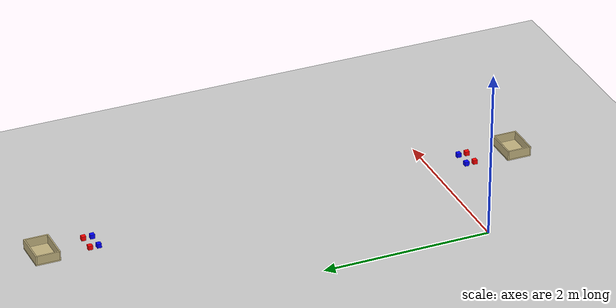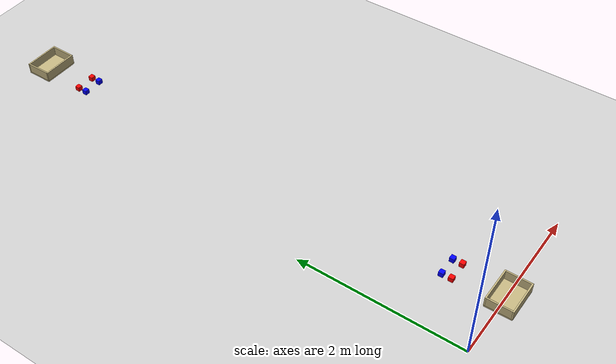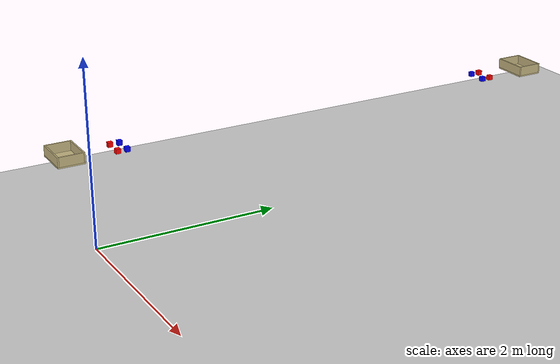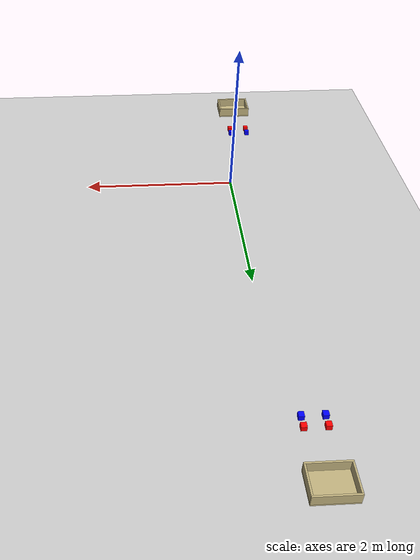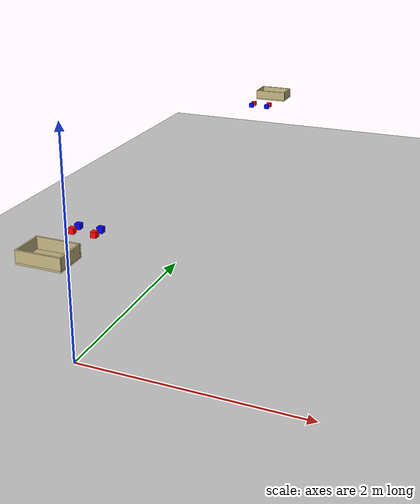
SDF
<sdf version="1.9">
 <world name="test_world">
  <physics name="default_physics" type="dart">
   <max_step_size>0.001</max_step_size>
   <real_time_factor>1</real_time_factor>
   <real_time_update_rate>1000</real_time_update_rate>
  </physics>
  <plugin name="gz::sim::systems::Physics" filename="ignition-gazebo-physics-system"/>
  <plugin name="gz::sim::systems::UserCommands" filename="ignition-gazebo-user-commands-system"/>
  <plugin name="gz::sim::systems::SceneBroadcaster" filename="ignition-gazebo-scene-broadcaster-system"/>
  <plugin name="gz::sim::systems::Contact" filename="ignition-gazebo-contact-system"/>
  <gravity>0 0 -9.8</gravity>
  <magnetic_field>6e-06 2.3e-05 -4.2e-05</magnetic_field>
  <atmosphere type="adiabatic"/>
  <scene><ambient>0.4 0.4 0.4 1</ambient><background>0.7 0.7 0.7 1</background><shadows>true</shadows></scene>
  <model name="ground_plane">
   <static>true</static>
   <link name="link">
    <collision name="collision">
     <geometry><plane><normal>0 0 1</normal><size>100 100</size></plane></geometry>
    </collision>
    <visual name="visual">
     <geometry><plane><normal>0 0 1</normal><size>100 100</size></plane></geometry>
     <material>
      <ambient>0.8 0.8 0.8 1</ambient>
      <diffuse>0.8 0.8 0.8 1</diffuse>
      <specular>0.8 0.8 0.8 1</specular>
     </material>
    </visual>
   </link>
  </model>
  <light name="sun" type="directional">
   <pose>0 0 10 0 0 0</pose>
   <intensity>1</intensity>
   <direction>-0.5 0.1 -0.9</direction>
   <diffuse>0.8 0.8 0.8 1</diffuse>
   <specular>0.2 0.2 0.2 1</specular>
   <attenuation>
    <range>1000</range>
    <linear>0.01</linear>
    <constant>0.9</constant>
    <quadratic>0.001</quadratic>
   </attenuation>
  </light>
  <include><uri>model://basket</uri><name>table1_basket_1</name><pose>0 -0.25 1.01 0 0 0</pose></include>
  <include><uri>model://cube_red</uri><name>table1_cube_red_1</name><pose>0.1 0.25 1.04 0 0 0</pose></include>
  <include><uri>model://cube_red</uri><name>table1_cube_red_2</name><pose>-0.1 0.25 1.04 0 0 0</pose></include>
  <include><uri>model://cube_blue</uri><name>table1_cube_blue_1</name><pose>0.1 0.35 1.04 0 0 0</pose></include>
  <include>
   <uri>model://cube_blue</uri>
   <name>table1_cube_blue_2</name>
   <pose>-0.1 0.35 1.04 0 0 0</pose>
  </include>
  <include><uri>model://basket</uri><name>table2_basket_1</name><pose>0 5.25 1.01 0 0 0</pose></include>
  <include><uri>model://cube_red</uri><name>table2_cube_red_1</name><pose>0.1 4.75 1.04 0 0 0</pose></include>
  <include><uri>model://cube_red</uri><name>table2_cube_red_2</name><pose>-0.1 4.75 1.04 0 0 0</pose></include>
  <include><uri>model://cube_blue</uri><name>table2_cube_blue_1</name><pose>0.1 4.65 1.04 0 0 0</pose></include>
  <include>
   <uri>model://cube_blue</uri>
   <name>table2_cube_blue_2</name>
   <pose>-0.1 4.65 1.04 0 0 0</pose>
  </include>
 </world>
</sdf>

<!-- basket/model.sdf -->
<sdf version="1.7">
  <model name="basket">
    <static>true</static>

    <link name="basket_link">

      <!-- Bottom -->
      <collision name="bottom_col">
        <pose>0 0 0.0075 0 0 0</pose>
        <geometry>
          <box><size>0.38 0.28 0.015</size></box>
        </geometry>
      </collision>

      <visual name="bottom_vis">
        <pose>0 0 0.0075 0 0 0</pose>
        <geometry>
          <box><size>0.38 0.28 0.015</size></box>
        </geometry>
        <material>
          <ambient>0.76 0.70 0.50 1</ambient>
          <diffuse>0.76 0.70 0.50 1</diffuse>
        </material>
      </visual>

      <!-- Wall Z = 0.065 -->

      <collision name="wall_x_pos_col">
        <pose>0.1825 0 0.065 0 0 0</pose>
        <geometry>
          <box><size>0.015 0.25 0.1</size></box>
        </geometry>
      </collision>

      <visual name="wall_x_pos_vis">
        <pose>0.1825 0 0.065 0 0 0</pose>
        <geometry>
          <box><size>0.015 0.25 0.1</size></box>
        </geometry>
        <material>
          <ambient>0.76 0.70 0.50 1</ambient>
          <diffuse>0.76 0.70 0.50 1</diffuse>
        </material>
      </visual>

      <collision name="wall_x_neg_col">
        <pose>-0.1825 0 0.065 0 0 0</pose>
        <geometry>
          <box><size>0.015 0.25 0.1</size></box>
        </geometry>
      </collision>

      <visual name="wall_x_neg_vis">
        <pose>-0.1825 0 0.065 0 0 0</pose>
        <geometry>
          <box><size>0.015 0.25 0.1</size></box>
        </geometry>
        <material>
          <ambient>0.76 0.70 0.50 1</ambient>
          <diffuse>0.76 0.70 0.50 1</diffuse>
        </material>
      </visual>

      <collision name="wall_y_pos_col">
        <pose>0 0.1325 0.065 0 0 0</pose>
        <geometry>
          <box><size>0.38 0.015 0.1</size></box>
        </geometry>
      </collision>

      <visual name="wall_y_pos_vis">
        <pose>0 0.1325 0.065 0 0 0</pose>
        <geometry>
          <box><size>0.38 0.015 0.1</size></box>
        </geometry>
        <material>
          <ambient>0.76 0.70 0.50 1</ambient>
          <diffuse>0.76 0.70 0.50 1</diffuse>
        </material>
      </visual>

      <collision name="wall_y_neg_col">
        <pose>0 -0.1325 0.065 0 0 0</pose>
        <geometry>
          <box><size>0.38 0.015 0.1</size></box>
        </geometry>
      </collision>

      <visual name="wall_y_neg_vis">
        <pose>0 -0.1325 0.065 0 0 0</pose>
        <geometry>
          <box><size>0.38 0.015 0.1</size></box>
        </geometry>
        <material>
          <ambient>0.76 0.70 0.50 1</ambient>
          <diffuse>0.76 0.70 0.50 1</diffuse>
        </material>
      </visual>

    </link>
  </model>
</sdf>

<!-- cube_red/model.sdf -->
<sdf version="1.8">
  <model name="cube_red">
    <static>false</static>
    <link name="cube_link">

      <inertial>
        <mass>0.1</mass>
        <inertia>
          <ixx>0.000042</ixx>
          <iyy>0.000042</iyy>
          <izz>0.000042</izz>
        </inertia>
      </inertial>

      <collision name="collision">
        <geometry>
          <box><size>0.05 0.05 0.05</size></box>
        </geometry>
        <surface>
          <friction>
            <ode><mu>0.8</mu><mu2>0.8</mu2></ode>
          </friction>
        </surface>
      </collision>

      <visual name="visual">
        <geometry>
          <box><size>0.05 0.05 0.05</size></box>
        </geometry>
        <material>
          <ambient>1 0 0 1</ambient>
          <diffuse>1 0 0 1</diffuse>
          <specular>0.1 0.1 0.1 1</specular>
        </material>
      </visual>

    </link>
  </model>
</sdf>

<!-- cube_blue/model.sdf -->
<sdf version="1.8">
  <model name="cube_blue">
    <static>false</static>
    <link name="cube_link">

      <inertial>
        <mass>0.1</mass>
        <inertia>
          <ixx>0.000042</ixx>
          <iyy>0.000042</iyy>
          <izz>0.000042</izz>
        </inertia>
      </inertial>

      <collision name="collision">
        <geometry>
          <box><size>0.05 0.05 0.05</size></box>
        </geometry>
        <surface>
          <friction>
            <ode><mu>0.8</mu><mu2>0.8</mu2></ode>
          </friction>
        </surface>
      </collision>

      <visual name="visual">
        <geometry>
          <box><size>0.05 0.05 0.05</size></box>
        </geometry>
        <material>
          <ambient>0 0 1 1</ambient>
          <diffuse>0 0 1 1</diffuse>
          <specular>0.1 0.1 0.1 1</specular>
        </material>
      </visual>

    </link>
  </model>
</sdf>
